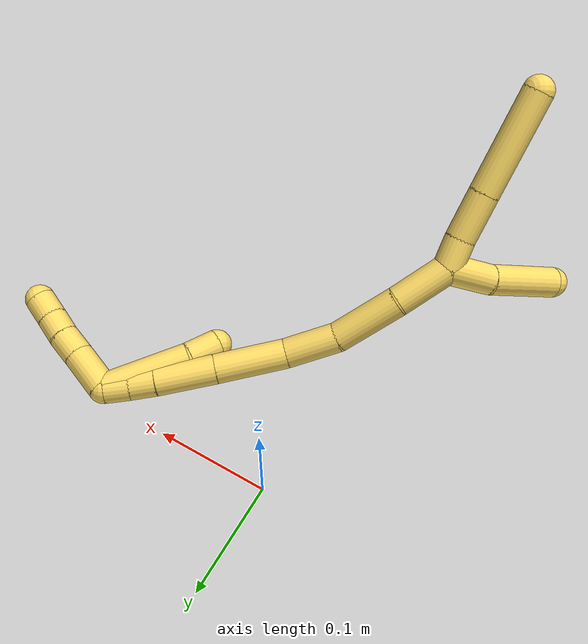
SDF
<sdf version="1.7">
 <world name="default">
  <model name="5">
   <static>0</static>
   <link name="5">
    <collision name="collision-cylinder-e_1_2_8">
     <pose>-0.005663 0.011011 0.003284 -1.28091 -0.457915 0.343922</pose>
     <geometry><cylinder><radius>0.0125</radius><length>0.02562</length></cylinder></geometry>
     <surface>
      <friction><ode><mu>1.16</mu><mu2>1.16</mu2><slip1>0</slip1><slip2>0</slip2></ode></friction>
      <contact><ode><kp>1e+06</kp><kd>1</kd><max_vel>0</max_vel><min_depth>0.001</min_depth></ode></contact>
     </surface>
    </collision>
    <visual name="visual-cylinder-e_1_2_8">
     <pose>-0.005663 0.011011 0.003284 -1.28091 -0.457915 0.343922</pose>
     <geometry><cylinder><radius>0.0125</radius><length>0.02562</length></cylinder></geometry>
     <material><ambient>1 0.858824 0.4 1</ambient></material>
    </visual>
    <collision name="collision-cylinder-e_2_8_9">
     <pose>-0.021986 0.037797 0.011697 -1.25651 -0.571206 0.420313</pose>
     <geometry><cylinder><radius>0.0125</radius><length>0.039436</length></cylinder></geometry>
     <surface>
      <friction><ode><mu>1.16</mu><mu2>1.16</mu2><slip1>0</slip1><slip2>0</slip2></ode></friction>
      <contact><ode><kp>1e+06</kp><kd>1</kd><max_vel>0</max_vel><min_depth>0.001</min_depth></ode></contact>
     </surface>
    </collision>
    <visual name="visual-cylinder-e_2_8_9">
     <pose>-0.021986 0.037797 0.011697 -1.25651 -0.571206 0.420313</pose>
     <geometry><cylinder><radius>0.0125</radius><length>0.039436</length></cylinder></geometry>
     <material><ambient>1 0.858824 0.4 1</ambient></material>
    </visual>
    <collision name="collision-cylinder-e_3_9_6">
     <pose>-0.055752 0.087423 0.027967 -1.25281 -0.575193 0.421729</pose>
     <geometry><cylinder><radius>0.0125</radius><length>0.084944</length></cylinder></geometry>
     <surface>
      <friction><ode><mu>1.16</mu><mu2>1.16</mu2><slip1>0</slip1><slip2>0</slip2></ode></friction>
      <contact><ode><kp>1e+06</kp><kd>1</kd><max_vel>0</max_vel><min_depth>0.001</min_depth></ode></contact>
     </surface>
    </collision>
    <visual name="visual-cylinder-e_3_9_6">
     <pose>-0.055752 0.087423 0.027967 -1.25281 -0.575193 0.421729</pose>
     <geometry><cylinder><radius>0.0125</radius><length>0.084944</length></cylinder></geometry>
     <material><ambient>1 0.858824 0.4 1</ambient></material>
    </visual>
    <collision name="collision-cylinder-e_1_2_10">
     <pose>-0.002003 -0.004703 0.01939 0.237964 -0.100042 -0.011969</pose>
     <geometry><cylinder><radius>0.0125</radius><length>0.040105</length></cylinder></geometry>
     <surface>
      <friction><ode><mu>1.16</mu><mu2>1.16</mu2><slip1>0</slip1><slip2>0</slip2></ode></friction>
      <contact><ode><kp>1e+06</kp><kd>1</kd><max_vel>0</max_vel><min_depth>0.001</min_depth></ode></contact>
     </surface>
    </collision>
    <visual name="visual-cylinder-e_1_2_10">
     <pose>-0.002003 -0.004703 0.01939 0.237964 -0.100042 -0.011969</pose>
     <geometry><cylinder><radius>0.0125</radius><length>0.040105</length></cylinder></geometry>
     <material><ambient>1 0.858824 0.4 1</ambient></material>
    </visual>
    <collision name="collision-cylinder-e_2_10_5">
     <pose>-0.007305 -0.01109 0.068497 0.05659 -0.110413 -0.003128</pose>
     <geometry><cylinder><radius>0.0125</radius><length>0.059895</length></cylinder></geometry>
     <surface>
      <friction><ode><mu>1.16</mu><mu2>1.16</mu2><slip1>0</slip1><slip2>0</slip2></ode></friction>
      <contact><ode><kp>1e+06</kp><kd>1</kd><max_vel>0</max_vel><min_depth>0.001</min_depth></ode></contact>
     </surface>
    </collision>
    <visual name="visual-cylinder-e_2_10_5">
     <pose>-0.007305 -0.01109 0.068497 0.05659 -0.110413 -0.003128</pose>
     <geometry><cylinder><radius>0.0125</radius><length>0.059895</length></cylinder></geometry>
     <material><ambient>1 0.858824 0.4 1</ambient></material>
    </visual>
    <collision name="collision-cylinder-e_1_2_11">
     <pose>0.012623 -0.010952 -0.016356 2.55154 0.570232 1.53465</pose>
     <geometry><cylinder><radius>0.0125</radius><length>0.046768</length></cylinder></geometry>
     <surface>
      <friction><ode><mu>1.16</mu><mu2>1.16</mu2><slip1>0</slip1><slip2>0</slip2></ode></friction>
      <contact><ode><kp>1e+06</kp><kd>1</kd><max_vel>0</max_vel><min_depth>0.001</min_depth></ode></contact>
     </surface>
    </collision>
    <visual name="visual-cylinder-e_1_2_11">
     <pose>0.012623 -0.010952 -0.016356 2.55154 0.570232 1.53465</pose>
     <geometry><cylinder><radius>0.0125</radius><length>0.046768</length></cylinder></geometry>
     <material><ambient>1 0.858824 0.4 1</ambient></material>
    </visual>
    <collision name="collision-cylinder-e_2_11_12">
     <pose>0.044137 -0.033625 -0.050397 2.55633 0.727457 1.80257</pose>
     <geometry><cylinder><radius>0.0125</radius><length>0.056816</length></cylinder></geometry>
     <surface>
      <friction><ode><mu>1.16</mu><mu2>1.16</mu2><slip1>0</slip1><slip2>0</slip2></ode></friction>
      <contact><ode><kp>1e+06</kp><kd>1</kd><max_vel>0</max_vel><min_depth>0.001</min_depth></ode></contact>
     </surface>
    </collision>
    <visual name="visual-cylinder-e_2_11_12">
     <pose>0.044137 -0.033625 -0.050397 2.55633 0.727457 1.80257</pose>
     <geometry><cylinder><radius>0.0125</radius><length>0.056816</length></cylinder></geometry>
     <material><ambient>1 0.858824 0.4 1</ambient></material>
    </visual>
    <collision name="collision-cylinder-e_3_12_13">
     <pose>0.0769 -0.049957 -0.084809 2.8726 0.674507 2.40501</pose>
     <geometry><cylinder><radius>0.0125</radius><length>0.044428</length></cylinder></geometry>
     <surface>
      <friction><ode><mu>1.16</mu><mu2>1.16</mu2><slip1>0</slip1><slip2>0</slip2></ode></friction>
      <contact><ode><kp>1e+06</kp><kd>1</kd><max_vel>0</max_vel><min_depth>0.001</min_depth></ode></contact>
     </surface>
    </collision>
    <visual name="visual-cylinder-e_3_12_13">
     <pose>0.0769 -0.049957 -0.084809 2.8726 0.674507 2.40501</pose>
     <geometry><cylinder><radius>0.0125</radius><length>0.044428</length></cylinder></geometry>
     <material><ambient>1 0.858824 0.4 1</ambient></material>
    </visual>
    <collision name="collision-cylinder-e_4_13_14">
     <pose>0.104359 -0.058727 -0.127651 2.98365 0.474539 2.50906</pose>
     <geometry><cylinder><radius>0.0125</radius><length>0.059463</length></cylinder></geometry>
     <surface>
      <friction><ode><mu>1.16</mu><mu2>1.16</mu2><slip1>0</slip1><slip2>0</slip2></ode></friction>
      <contact><ode><kp>1e+06</kp><kd>1</kd><max_vel>0</max_vel><min_depth>0.001</min_depth></ode></contact>
     </surface>
    </collision>
    <visual name="visual-cylinder-e_4_13_14">
     <pose>0.104359 -0.058727 -0.127651 2.98365 0.474539 2.50906</pose>
     <geometry><cylinder><radius>0.0125</radius><length>0.059463</length></cylinder></geometry>
     <material><ambient>1 0.858824 0.4 1</ambient></material>
    </visual>
    <collision name="collision-cylinder-e_5_14_15">
     <pose>0.129261 -0.065956 -0.175805 3.00321 0.470539 2.57872</pose>
     <geometry><cylinder><radius>0.0125</radius><length>0.049925</length></cylinder></geometry>
     <surface>
      <friction><ode><mu>1.16</mu><mu2>1.16</mu2><slip1>0</slip1><slip2>0</slip2></ode></friction>
      <contact><ode><kp>1e+06</kp><kd>1</kd><max_vel>0</max_vel><min_depth>0.001</min_depth></ode></contact>
     </surface>
    </collision>
    <visual name="visual-cylinder-e_5_14_15">
     <pose>0.129261 -0.065956 -0.175805 3.00321 0.470539 2.57872</pose>
     <geometry><cylinder><radius>0.0125</radius><length>0.049925</length></cylinder></geometry>
     <material><ambient>1 0.858824 0.4 1</ambient></material>
    </visual>
    <collision name="collision-cylinder-e_6_15_16">
     <pose>0.145733 -0.069882 -0.207348 3.05172 0.495173 2.78947</pose>
     <geometry><cylinder><radius>0.0125</radius><length>0.021696</length></cylinder></geometry>
     <surface>
      <friction><ode><mu>1.16</mu><mu2>1.16</mu2><slip1>0</slip1><slip2>0</slip2></ode></friction>
      <contact><ode><kp>1e+06</kp><kd>1</kd><max_vel>0</max_vel><min_depth>0.001</min_depth></ode></contact>
     </surface>
    </collision>
    <visual name="visual-cylinder-e_6_15_16">
     <pose>0.145733 -0.069882 -0.207348 3.05172 0.495173 2.78947</pose>
     <geometry><cylinder><radius>0.0125</radius><length>0.021696</length></cylinder></geometry>
     <material><ambient>1 0.858824 0.4 1</ambient></material>
    </visual>
    <collision name="collision-cylinder-e_7_16_1">
     <pose>0.155018 -0.071218 -0.226444 3.09162 0.406234 2.90008</pose>
     <geometry><cylinder><radius>0.0125</radius><length>0.020905</length></cylinder></geometry>
     <surface>
      <friction><ode><mu>1.16</mu><mu2>1.16</mu2><slip1>0</slip1><slip2>0</slip2></ode></friction>
      <contact><ode><kp>1e+06</kp><kd>1</kd><max_vel>0</max_vel><min_depth>0.001</min_depth></ode></contact>
     </surface>
    </collision>
    <visual name="visual-cylinder-e_7_16_1">
     <pose>0.155018 -0.071218 -0.226444 3.09162 0.406234 2.90008</pose>
     <geometry><cylinder><radius>0.0125</radius><length>0.020905</length></cylinder></geometry>
     <material><ambient>1 0.858824 0.4 1</ambient></material>
    </visual>
    <collision name="collision-cylinder-e_1_1_17">
     <pose>0.168646 -0.057143 -0.242643 -1.99701 0.536127 -0.806076</pose>
     <geometry><cylinder><radius>0.0125</radius><length>0.037187</length></cylinder></geometry>
     <surface>
      <friction><ode><mu>1.16</mu><mu2>1.16</mu2><slip1>0</slip1><slip2>0</slip2></ode></friction>
      <contact><ode><kp>1e+06</kp><kd>1</kd><max_vel>0</max_vel><min_depth>0.001</min_depth></ode></contact>
     </surface>
    </collision>
    <visual name="visual-cylinder-e_1_1_17">
     <pose>0.168646 -0.057143 -0.242643 -1.99701 0.536127 -0.806076</pose>
     <geometry><cylinder><radius>0.0125</radius><length>0.037187</length></cylinder></geometry>
     <material><ambient>1 0.858824 0.4 1</ambient></material>
    </visual>
    <collision name="collision-cylinder-e_2_17_18">
     <pose>0.1834 -0.033776 -0.253641 -2.03293 0.49041 -0.768268</pose>
     <geometry><cylinder><radius>0.0125</radius><length>0.022321</length></cylinder></geometry>
     <surface>
      <friction><ode><mu>1.16</mu><mu2>1.16</mu2><slip1>0</slip1><slip2>0</slip2></ode></friction>
      <contact><ode><kp>1e+06</kp><kd>1</kd><max_vel>0</max_vel><min_depth>0.001</min_depth></ode></contact>
     </surface>
    </collision>
    <visual name="visual-cylinder-e_2_17_18">
     <pose>0.1834 -0.033776 -0.253641 -2.03293 0.49041 -0.768268</pose>
     <geometry><cylinder><radius>0.0125</radius><length>0.022321</length></cylinder></geometry>
     <material><ambient>1 0.858824 0.4 1</ambient></material>
    </visual>
    <collision name="collision-cylinder-e_3_18_19">
     <pose>0.19331 -0.016664 -0.261153 -1.93064 0.483259 -0.684071</pose>
     <geometry><cylinder><radius>0.0125</radius><length>0.020029</length></cylinder></geometry>
     <surface>
      <friction><ode><mu>1.16</mu><mu2>1.16</mu2><slip1>0</slip1><slip2>0</slip2></ode></friction>
      <contact><ode><kp>1e+06</kp><kd>1</kd><max_vel>0</max_vel><min_depth>0.001</min_depth></ode></contact>
     </surface>
    </collision>
    <visual name="visual-cylinder-e_3_18_19">
     <pose>0.19331 -0.016664 -0.261153 -1.93064 0.483259 -0.684071</pose>
     <geometry><cylinder><radius>0.0125</radius><length>0.020029</length></cylinder></geometry>
     <material><ambient>1 0.858824 0.4 1</ambient></material>
    </visual>
    <collision name="collision-cylinder-e_4_19_4">
     <pose>0.202018 0.000296 -0.267914 -1.96849 0.407461 -0.602803</pose>
     <geometry><cylinder><radius>0.0125</radius><length>0.020463</length></cylinder></geometry>
     <surface>
      <friction><ode><mu>1.16</mu><mu2>1.16</mu2><slip1>0</slip1><slip2>0</slip2></ode></friction>
      <contact><ode><kp>1e+06</kp><kd>1</kd><max_vel>0</max_vel><min_depth>0.001</min_depth></ode></contact>
     </surface>
    </collision>
    <visual name="visual-cylinder-e_4_19_4">
     <pose>0.202018 0.000296 -0.267914 -1.96849 0.407461 -0.602803</pose>
     <geometry><cylinder><radius>0.0125</radius><length>0.020463</length></cylinder></geometry>
     <material><ambient>1 0.858824 0.4 1</ambient></material>
    </visual>
    <collision name="collision-cylinder-e_1_1_20">
     <pose>0.146488 -0.061528 -0.203263 -0.30091 -0.35347 0.054138</pose>
     <geometry><cylinder><radius>0.0125</radius><length>0.073147</length></cylinder></geometry>
     <surface>
      <friction><ode><mu>1.16</mu><mu2>1.16</mu2><slip1>0</slip1><slip2>0</slip2></ode></friction>
      <contact><ode><kp>1e+06</kp><kd>1</kd><max_vel>0</max_vel><min_depth>0.001</min_depth></ode></contact>
     </surface>
    </collision>
    <visual name="visual-cylinder-e_1_1_20">
     <pose>0.146488 -0.061528 -0.203263 -0.30091 -0.35347 0.054138</pose>
     <geometry><cylinder><radius>0.0125</radius><length>0.073147</length></cylinder></geometry>
     <material><ambient>1 0.858824 0.4 1</ambient></material>
    </visual>
    <collision name="collision-cylinder-e_2_20_3">
     <pose>0.131763 -0.046465 -0.158161 -0.377727 -0.154421 0.029573</pose>
     <geometry><cylinder><radius>0.0125</radius><length>0.026853</length></cylinder></geometry>
     <surface>
      <friction><ode><mu>1.16</mu><mu2>1.16</mu2><slip1>0</slip1><slip2>0</slip2></ode></friction>
      <contact><ode><kp>1e+06</kp><kd>1</kd><max_vel>0</max_vel><min_depth>0.001</min_depth></ode></contact>
     </surface>
    </collision>
    <visual name="visual-cylinder-e_2_20_3">
     <pose>0.131763 -0.046465 -0.158161 -0.377727 -0.154421 0.029573</pose>
     <geometry><cylinder><radius>0.0125</radius><length>0.026853</length></cylinder></geometry>
     <material><ambient>1 0.858824 0.4 1</ambient></material>
    </visual>
    <collision name="collision-sphere-3">
     <pose>0.129697 -0.041572 -0.14583 0 -0 0</pose>
     <geometry><sphere><radius>0.0125</radius></sphere></geometry>
     <surface>
      <friction><ode><mu>1.16</mu><mu2>1.16</mu2><slip1>0</slip1><slip2>0</slip2></ode></friction>
      <contact><ode><kp>1e+06</kp><kd>1</kd><max_vel>0</max_vel><min_depth>0.001</min_depth></ode></contact>
     </surface>
    </collision>
    <visual name="visual-sphere-3">
     <pose>0.129697 -0.041572 -0.14583 0 -0 0</pose>
     <geometry><sphere><radius>0.0125</radius></sphere></geometry>
     <material><ambient>1 0.858824 0.4 1</ambient></material>
    </visual>
    <collision name="collision-sphere-20">
     <pose>0.133828 -0.051358 -0.170493 0 -0 0</pose>
     <geometry><sphere><radius>0.0125</radius></sphere></geometry>
     <surface>
      <friction><ode><mu>1.16</mu><mu2>1.16</mu2><slip1>0</slip1><slip2>0</slip2></ode></friction>
      <contact><ode><kp>1e+06</kp><kd>1</kd><max_vel>0</max_vel><min_depth>0.001</min_depth></ode></contact>
     </surface>
    </collision>
    <visual name="visual-sphere-20">
     <pose>0.133828 -0.051358 -0.170493 0 -0 0</pose>
     <geometry><sphere><radius>0.0125</radius></sphere></geometry>
     <material><ambient>1 0.858824 0.4 1</ambient></material>
    </visual>
    <collision name="collision-sphere-4">
     <pose>0.206072 0.008957 -0.271552 0 -0 0</pose>
     <geometry><sphere><radius>0.0125</radius></sphere></geometry>
     <surface>
      <friction><ode><mu>1.16</mu><mu2>1.16</mu2><slip1>0</slip1><slip2>0</slip2></ode></friction>
      <contact><ode><kp>1e+06</kp><kd>1</kd><max_vel>0</max_vel><min_depth>0.001</min_depth></ode></contact>
     </surface>
    </collision>
    <visual name="visual-sphere-4">
     <pose>0.206072 0.008957 -0.271552 0 -0 0</pose>
     <geometry><sphere><radius>0.0125</radius></sphere></geometry>
     <material><ambient>1 0.858824 0.4 1</ambient></material>
    </visual>
    <collision name="collision-sphere-5">
     <pose>-0.010605 -0.012773 0.098215 0 -0 0</pose>
     <geometry><sphere><radius>0.0125</radius></sphere></geometry>
     <surface>
      <friction><ode><mu>1.16</mu><mu2>1.16</mu2><slip1>0</slip1><slip2>0</slip2></ode></friction>
      <contact><ode><kp>1e+06</kp><kd>1</kd><max_vel>0</max_vel><min_depth>0.001</min_depth></ode></contact>
     </surface>
    </collision>
    <visual name="visual-sphere-5">
     <pose>-0.010605 -0.012773 0.098215 0 -0 0</pose>
     <geometry><sphere><radius>0.0125</radius></sphere></geometry>
     <material><ambient>1 0.858824 0.4 1</ambient></material>
    </visual>
    <collision name="collision-sphere-10">
     <pose>-0.004005 -0.009406 0.03878 0 -0 0</pose>
     <geometry><sphere><radius>0.0125</radius></sphere></geometry>
     <surface>
      <friction><ode><mu>1.16</mu><mu2>1.16</mu2><slip1>0</slip1><slip2>0</slip2></ode></friction>
      <contact><ode><kp>1e+06</kp><kd>1</kd><max_vel>0</max_vel><min_depth>0.001</min_depth></ode></contact>
     </surface>
    </collision>
    <visual name="visual-sphere-10">
     <pose>-0.004005 -0.009406 0.03878 0 -0 0</pose>
     <geometry><sphere><radius>0.0125</radius></sphere></geometry>
     <material><ambient>1 0.858824 0.4 1</ambient></material>
    </visual>
    <collision name="collision-sphere-6">
     <pose>-0.078856 0.121274 0.039109 0 -0 0</pose>
     <geometry><sphere><radius>0.0125</radius></sphere></geometry>
     <surface>
      <friction><ode><mu>1.16</mu><mu2>1.16</mu2><slip1>0</slip1><slip2>0</slip2></ode></friction>
      <contact><ode><kp>1e+06</kp><kd>1</kd><max_vel>0</max_vel><min_depth>0.001</min_depth></ode></contact>
     </surface>
    </collision>
    <visual name="visual-sphere-6">
     <pose>-0.078856 0.121274 0.039109 0 -0 0</pose>
     <geometry><sphere><radius>0.0125</radius></sphere></geometry>
     <material><ambient>1 0.858824 0.4 1</ambient></material>
    </visual>
    <collision name="collision-sphere-9">
     <pose>-0.032647 0.053572 0.016825 0 -0 0</pose>
     <geometry><sphere><radius>0.0125</radius></sphere></geometry>
     <surface>
      <friction><ode><mu>1.16</mu><mu2>1.16</mu2><slip1>0</slip1><slip2>0</slip2></ode></friction>
      <contact><ode><kp>1e+06</kp><kd>1</kd><max_vel>0</max_vel><min_depth>0.001</min_depth></ode></contact>
     </surface>
    </collision>
    <visual name="visual-sphere-9">
     <pose>-0.032647 0.053572 0.016825 0 -0 0</pose>
     <geometry><sphere><radius>0.0125</radius></sphere></geometry>
     <material><ambient>1 0.858824 0.4 1</ambient></material>
    </visual>
    <collision name="collision-sphere-2">
     <geometry><sphere><radius>0.0125</radius></sphere></geometry>
     <surface>
      <friction><ode><mu>1.16</mu><mu2>1.16</mu2><slip1>0</slip1><slip2>0</slip2></ode></friction>
      <contact><ode><kp>1e+06</kp><kd>1</kd><max_vel>0</max_vel><min_depth>0.001</min_depth></ode></contact>
     </surface>
    </collision>
    <visual name="visual-sphere-2">
     <geometry><sphere><radius>0.0125</radius></sphere></geometry>
     <material><ambient>1 0.858824 0.4 1</ambient></material>
    </visual>
    <collision name="collision-sphere-19">
     <pose>0.197963 -0.008364 -0.264276 0 -0 0</pose>
     <geometry><sphere><radius>0.0125</radius></sphere></geometry>
     <surface>
      <friction><ode><mu>1.16</mu><mu2>1.16</mu2><slip1>0</slip1><slip2>0</slip2></ode></friction>
      <contact><ode><kp>1e+06</kp><kd>1</kd><max_vel>0</max_vel><min_depth>0.001</min_depth></ode></contact>
     </surface>
    </collision>
    <visual name="visual-sphere-19">
     <pose>0.197963 -0.008364 -0.264276 0 -0 0</pose>
     <geometry><sphere><radius>0.0125</radius></sphere></geometry>
     <material><ambient>1 0.858824 0.4 1</ambient></material>
    </visual>
    <collision name="collision-sphere-8">
     <pose>-0.011326 0.022022 0.006569 0 -0 0</pose>
     <geometry><sphere><radius>0.0125</radius></sphere></geometry>
     <surface>
      <friction><ode><mu>1.16</mu><mu2>1.16</mu2><slip1>0</slip1><slip2>0</slip2></ode></friction>
      <contact><ode><kp>1e+06</kp><kd>1</kd><max_vel>0</max_vel><min_depth>0.001</min_depth></ode></contact>
     </surface>
    </collision>
    <visual name="visual-sphere-8">
     <pose>-0.011326 0.022022 0.006569 0 -0 0</pose>
     <geometry><sphere><radius>0.0125</radius></sphere></geometry>
     <material><ambient>1 0.858824 0.4 1</ambient></material>
    </visual>
    <collision name="collision-sphere-11">
     <pose>0.025247 -0.021904 -0.032712 0 -0 0</pose>
     <geometry><sphere><radius>0.0125</radius></sphere></geometry>
     <surface>
      <friction><ode><mu>1.16</mu><mu2>1.16</mu2><slip1>0</slip1><slip2>0</slip2></ode></friction>
      <contact><ode><kp>1e+06</kp><kd>1</kd><max_vel>0</max_vel><min_depth>0.001</min_depth></ode></contact>
     </surface>
    </collision>
    <visual name="visual-sphere-11">
     <pose>0.025247 -0.021904 -0.032712 0 -0 0</pose>
     <geometry><sphere><radius>0.0125</radius></sphere></geometry>
     <material><ambient>1 0.858824 0.4 1</ambient></material>
    </visual>
    <collision name="collision-sphere-12">
     <pose>0.063027 -0.045346 -0.068083 0 -0 0</pose>
     <geometry><sphere><radius>0.0125</radius></sphere></geometry>
     <surface>
      <friction><ode><mu>1.16</mu><mu2>1.16</mu2><slip1>0</slip1><slip2>0</slip2></ode></friction>
      <contact><ode><kp>1e+06</kp><kd>1</kd><max_vel>0</max_vel><min_depth>0.001</min_depth></ode></contact>
     </surface>
    </collision>
    <visual name="visual-sphere-12">
     <pose>0.063027 -0.045346 -0.068083 0 -0 0</pose>
     <geometry><sphere><radius>0.0125</radius></sphere></geometry>
     <material><ambient>1 0.858824 0.4 1</ambient></material>
    </visual>
    <collision name="collision-sphere-13">
     <pose>0.090774 -0.054568 -0.101534 0 -0 0</pose>
     <geometry><sphere><radius>0.0125</radius></sphere></geometry>
     <surface>
      <friction><ode><mu>1.16</mu><mu2>1.16</mu2><slip1>0</slip1><slip2>0</slip2></ode></friction>
      <contact><ode><kp>1e+06</kp><kd>1</kd><max_vel>0</max_vel><min_depth>0.001</min_depth></ode></contact>
     </surface>
    </collision>
    <visual name="visual-sphere-13">
     <pose>0.090774 -0.054568 -0.101534 0 -0 0</pose>
     <geometry><sphere><radius>0.0125</radius></sphere></geometry>
     <material><ambient>1 0.858824 0.4 1</ambient></material>
    </visual>
    <collision name="collision-sphere-14">
     <pose>0.117944 -0.062887 -0.153768 0 -0 0</pose>
     <geometry><sphere><radius>0.0125</radius></sphere></geometry>
     <surface>
      <friction><ode><mu>1.16</mu><mu2>1.16</mu2><slip1>0</slip1><slip2>0</slip2></ode></friction>
      <contact><ode><kp>1e+06</kp><kd>1</kd><max_vel>0</max_vel><min_depth>0.001</min_depth></ode></contact>
     </surface>
    </collision>
    <visual name="visual-sphere-14">
     <pose>0.117944 -0.062887 -0.153768 0 -0 0</pose>
     <geometry><sphere><radius>0.0125</radius></sphere></geometry>
     <material><ambient>1 0.858824 0.4 1</ambient></material>
    </visual>
    <collision name="collision-sphere-15">
     <pose>0.140578 -0.069025 -0.197842 0 -0 0</pose>
     <geometry><sphere><radius>0.0125</radius></sphere></geometry>
     <surface>
      <friction><ode><mu>1.16</mu><mu2>1.16</mu2><slip1>0</slip1><slip2>0</slip2></ode></friction>
      <contact><ode><kp>1e+06</kp><kd>1</kd><max_vel>0</max_vel><min_depth>0.001</min_depth></ode></contact>
     </surface>
    </collision>
    <visual name="visual-sphere-15">
     <pose>0.140578 -0.069025 -0.197842 0 -0 0</pose>
     <geometry><sphere><radius>0.0125</radius></sphere></geometry>
     <material><ambient>1 0.858824 0.4 1</ambient></material>
    </visual>
    <collision name="collision-sphere-16">
     <pose>0.150887 -0.070739 -0.216855 0 -0 0</pose>
     <geometry><sphere><radius>0.0125</radius></sphere></geometry>
     <surface>
      <friction><ode><mu>1.16</mu><mu2>1.16</mu2><slip1>0</slip1><slip2>0</slip2></ode></friction>
      <contact><ode><kp>1e+06</kp><kd>1</kd><max_vel>0</max_vel><min_depth>0.001</min_depth></ode></contact>
     </surface>
    </collision>
    <visual name="visual-sphere-16">
     <pose>0.150887 -0.070739 -0.216855 0 -0 0</pose>
     <geometry><sphere><radius>0.0125</radius></sphere></geometry>
     <material><ambient>1 0.858824 0.4 1</ambient></material>
    </visual>
    <collision name="collision-sphere-1">
     <pose>0.159148 -0.071698 -0.236034 0 -0 0</pose>
     <geometry><sphere><radius>0.0125</radius></sphere></geometry>
     <surface>
      <friction><ode><mu>1.16</mu><mu2>1.16</mu2><slip1>0</slip1><slip2>0</slip2></ode></friction>
      <contact><ode><kp>1e+06</kp><kd>1</kd><max_vel>0</max_vel><min_depth>0.001</min_depth></ode></contact>
     </surface>
    </collision>
    <visual name="visual-sphere-1">
     <pose>0.159148 -0.071698 -0.236034 0 -0 0</pose>
     <geometry><sphere><radius>0.0125</radius></sphere></geometry>
     <material><ambient>1 0.858824 0.4 1</ambient></material>
    </visual>
    <collision name="collision-sphere-18">
     <pose>0.188656 -0.024964 -0.25803 0 -0 0</pose>
     <geometry><sphere><radius>0.0125</radius></sphere></geometry>
     <surface>
      <friction><ode><mu>1.16</mu><mu2>1.16</mu2><slip1>0</slip1><slip2>0</slip2></ode></friction>
      <contact><ode><kp>1e+06</kp><kd>1</kd><max_vel>0</max_vel><min_depth>0.001</min_depth></ode></contact>
     </surface>
    </collision>
    <visual name="visual-sphere-18">
     <pose>0.188656 -0.024964 -0.25803 0 -0 0</pose>
     <geometry><sphere><radius>0.0125</radius></sphere></geometry>
     <material><ambient>1 0.858824 0.4 1</ambient></material>
    </visual>
    <collision name="collision-sphere-17">
     <pose>0.178143 -0.042589 -0.249251 0 -0 0</pose>
     <geometry><sphere><radius>0.0125</radius></sphere></geometry>
     <surface>
      <friction><ode><mu>1.16</mu><mu2>1.16</mu2><slip1>0</slip1><slip2>0</slip2></ode></friction>
      <contact><ode><kp>1e+06</kp><kd>1</kd><max_vel>0</max_vel><min_depth>0.001</min_depth></ode></contact>
     </surface>
    </collision>
    <visual name="visual-sphere-17">
     <pose>0.178143 -0.042589 -0.249251 0 -0 0</pose>
     <geometry><sphere><radius>0.0125</radius></sphere></geometry>
     <material><ambient>1 0.858824 0.4 1</ambient></material>
    </visual>
    <inertial>
     <pose>0.069246 -0.020055 -0.092943 0 -0 0</pose>
     <mass>0.75</mass>
     <inertia>
      <ixx>0.000151</ixx>
      <ixy>0</ixy>
      <ixz>0</ixz>
      <iyy>0.000217</iyy>
      <iyz>0</iyz>
      <izz>-4.6e-05</izz>
     </inertia>
    </inertial>
   </link>
   <pose>-0.056606 -0.193966 0.119156 2.29937 0.942416 -0.116321</pose>
  </model>
 </world>
</sdf>
